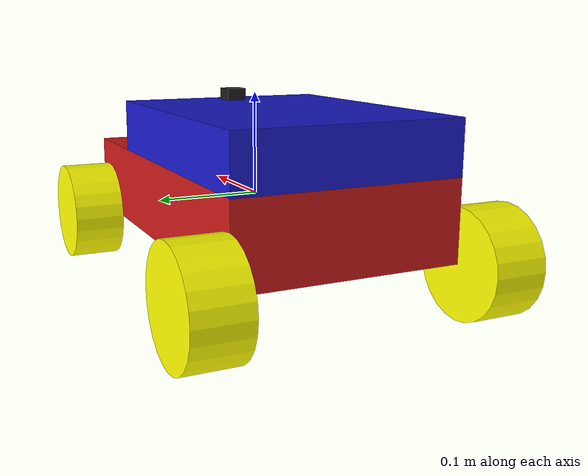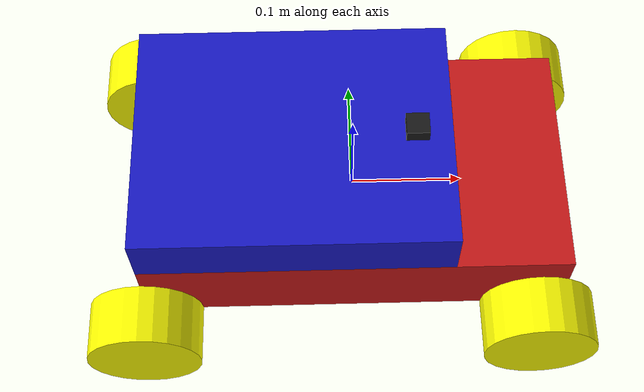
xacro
<?xml version="1.0"?>
<robot name="car" xmlns:xacro="http://ros.org/wiki/xacro">

  <xacro:property name="pi" value="3.1415926535897931" />
  <xacro:property name="car_length" value="0.3762" />
  <xacro:property name="car_width" value="0.2124" />
  <xacro:property name="car_height" value="0.0762" />
  <xacro:property name="car_mass" value="2.4" />
  <xacro:property name="wheel_radius" value="0.0508" />
  <xacro:property name="wheel_length" value="0.0508" />
  <xacro:property name="wheel_mass" value="0.6"/>
  <xacro:property name="capota_car_length" value="0.2746" />
  <xacro:property name="capota_car_width" value="0.2124" />
  <xacro:property name="capota_car_height" value="0.0508" />
  <xacro:property name="capota_car_mass" value="0.25" />

  <xacro:property name="steering_cylinder_radius" value="0.01" />
  <xacro:property name="steering_cylinder_length" value="0.2124" />
  <xacro:property name="steering_cylinder_mass" value="0.05" />

<xacro:property name="back_wheels_velocity_limit" value="100.0" />
  <xacro:property name="steering_velocity_limit" value="100.0" />

  <gazebo reference="base_link">
    <mu1>0.2</mu1>
    <mu2>0.2</mu2>
  </gazebo>
  <gazebo reference="back_right_wheel_link">
    <mu1>100.0</mu1>
    <mu2>100.0</mu2>
  </gazebo>
  <gazebo reference="back_left_wheel_link">
    <mu1>100.0</mu1>
    <mu2>100.0</mu2>
  </gazebo>
  <gazebo reference="front_right_wheel_link">
    <mu1>100.0</mu1>
    <mu2>100.0</mu2>
  </gazebo>
  <gazebo reference="front_left_wheel_link">
    <mu1>100.0</mu1>
    <mu2>100.0</mu2>
  </gazebo>

  <gazebo reference="base_link">
    <material>Gazebo/Green</material>
  </gazebo>
  <gazebo reference="capota">
    <material>Gazebo/Green</material>
  </gazebo>
  <gazebo reference="steering_cylinder_link">
    <material>Gazebo/DarkGrey</material>
  </gazebo>
  <gazebo reference="front_left_wheel_link">
    <material>Gazebo/Yellow</material>
  </gazebo>
  <gazebo reference="front_right_wheel_link">
    <material>Gazebo/Yellow</material>
  </gazebo>
  <gazebo reference="back_left_wheel_link">
    <material>Gazebo/Yellow</material>
  </gazebo>
  <gazebo reference="back_right_wheel_link">
    <material>Gazebo/Yellow</material>
  </gazebo>
  <gazebo reference="camera_link">
    <material>Gazebo/Red</material>
  </gazebo>

 <material name="car_body_color"> <color rgba="0.8 0.1 0.1 1" /> </material>
  <material name="car_capota_color"> <color rgba="0.1 0.1 0.8 1" /> </material>
  <material name="steering_color"> <color rgba="0.3 0.3 0.3 1" /> </material>
  <material name="wheel_main_color"> <color rgba="0.2 0.2 0.2 1" /> </material>
  <material name="wheel_stripe_color"> <color rgba="1.0 1.0 0.0 1" /> </material>
  <material name="camera_color"> <color rgba="0.1 0.1 0.1 1" /> </material>

  <material name="green">
    <color rgba="0 1 0 1" />
  </material>
  <material name="light_green">
    <color rgba="0.1 1 0.2 1" />
  </material>
  <material name="yellow">
    <color rgba="1 1 0 1" />
  </material>
  <material name="grey">
    <color rgba="0.5 0.5 0.5 1"/>
  </material>

  <gazebo>
    <plugin name="gazebo_ros_control" filename="libgazebo_ros_control.so">
      <robotNamespace>/car</robotNamespace>
      <robotSimType>gazebo_ros_control/DefaultRobotHWSim</robotSimType>
    </plugin>
  </gazebo>

<link name="dummy"> </link>
  <joint name="dummy_joint" type="fixed">
    <parent link="dummy" />
    <child link="base_link" />
  </joint>
  <link name="base_link">
    <visual>
      <geometry>
        <box size="${car_length} ${car_width} ${car_height}" />
      </geometry>
      <material name="car_body_color" />
    </visual>
    <collision>
      <geometry>
        <box size="${car_length} ${car_width} ${car_height}" />
      </geometry>
    </collision>
    <inertial>
      <mass value="${car_mass}" />
      <inertia
        ixx="${(car_mass/12) * (car_width**2 + car_height**2)}"
        ixy="0"
        ixz="0"
        iyy="${(car_mass/12) * (car_length**2 + car_height**2)}"
        iyz="0"
        izz="${(car_mass/12) * (car_length**2 + car_width**2)}" />
    </inertial>
  </link>

<link name="capota">
    <visual>
      <geometry>
        <box size="${capota_car_length} ${capota_car_width} ${capota_car_height}" />
      </geometry>
      <material name="car_capota_color" />
    </visual>
    <collision>
      <geometry>
        <box size="${capota_car_length} ${capota_car_width} ${capota_car_height}" />
      </geometry>
    </collision>
    <inertial>
      <mass value="${capota_car_mass}" />
      <inertia
        ixx="${(capota_car_mass/12) * (capota_car_width**2 + capota_car_height**2)}"
        ixy="0"
        ixz="0"
        iyy="${(capota_car_mass/12) * (capota_car_length**2 + capota_car_height**2)}"
        iyz="0"
        izz="${(capota_car_mass/12) * (capota_car_length**2 + capota_car_width**2)}" />
    </inertial>
  </link>
  <joint name="capota_joint" type="fixed">
    <parent link="base_link" />
    <child link="capota" />
    <origin xyz="${capota_car_length/2-car_length/2} 0 ${car_height/2+capota_car_height/2}"
      rpy="0 0 0" />
  </joint>

<link name="steering_cylinder_link">
    <visual>
      <geometry>
        <cylinder radius="${steering_cylinder_radius}" length="${steering_cylinder_length}"/>
      </geometry>
      <material name="steering_color"/>
    </visual>
    <collision>
      <geometry>
        <cylinder radius="${steering_cylinder_radius}" length="${steering_cylinder_length}"/>
      </geometry>
    </collision>
    <inertial>
      <mass value="${steering_cylinder_mass}"/>
      <inertia
        ixx="${(steering_cylinder_mass/12) * (3*steering_cylinder_radius**2 + steering_cylinder_length**2)}"
        ixy="0" ixz="0"
        iyy="${(steering_cylinder_mass/12) * (3*steering_cylinder_radius**2 + steering_cylinder_length**2)}"
        iyz="0"
        izz="${(steering_cylinder_mass/2) * steering_cylinder_radius**2}"/>
    </inertial>
  </link>

  <joint name="steering_cylinder_joint" type="revolute">
    <parent link="base_link"/>
    <child link="steering_cylinder_link"/>
    <origin xyz="${car_length/2-car_length/16} 0  ${-car_height/2}" rpy="${pi/2} 0 0"/>
    <axis xyz="0 1 0"/>
    <limit lower="${-pi/16}" upper="${pi/16}" effort="10.0" velocity="${steering_velocity_limit}"/>
  </joint>

  <link name="front_left_wheel_link">
    <visual>
      <geometry>
        <cylinder radius="${wheel_radius}" length="${wheel_length}"/>
      </geometry>
      <material name="yellow"/>
    </visual>
    <collision>
      <geometry>
        <cylinder radius="${wheel_radius}" length="${wheel_length}"/>
      </geometry>
    </collision>
    <inertial>
      <mass value="${wheel_mass}"/>
      <inertia
        ixx="${(wheel_mass/12) * (3*wheel_radius**2 + wheel_length**2)}"
        ixy="0" ixz="0"
        iyy="${(wheel_mass/12) * (3*wheel_radius**2 + wheel_length**2)}"
        iyz="0"
        izz="${(wheel_mass/2) * wheel_radius**2}"/>
    </inertial>
  </link>
  <joint name="front_left_wheel_joint" type="continuous">
    <parent link="steering_cylinder_link"/>
    <child link="front_left_wheel_link"/>
    <origin xyz="0 0 ${steering_cylinder_length/2+wheel_length/2}" rpy="0 0 0"/>
    <axis xyz="0 0 1"/>
  </joint>

<link name="front_right_wheel_link">
    <visual>
      <geometry>
        <cylinder radius="${wheel_radius}" length="${wheel_length}"/>
      </geometry>
      <material name="yellow"/>
    </visual>
    <collision>
      <geometry>
        <cylinder radius="${wheel_radius}" length="${wheel_length}"/>
      </geometry>
    </collision>
    <inertial>
      <mass value="${wheel_mass}"/>
      <inertia
        ixx="${(wheel_mass/12) * (3*wheel_radius**2 + wheel_length**2)}"
        ixy="0" ixz="0"
        iyy="${(wheel_mass/12) * (3*wheel_radius**2 + wheel_length**2)}"
        iyz="0"
        izz="${(wheel_mass/2) * wheel_radius**2}"/>
    </inertial>
  </link>

  <joint name="front_right_wheel_joint" type="continuous">
    <parent link="steering_cylinder_link"/>
    <child link="front_right_wheel_link"/>
    <origin xyz="0 0 ${-steering_cylinder_length/2-wheel_length/2} " rpy="0 0 0"/>
    <axis xyz="0 0 1"/>
  </joint>

  <link name="back_left_wheel_link">
    <visual>
      <geometry>
        <cylinder radius="${wheel_radius}" length="${wheel_length}" />
      </geometry>
      <material name="yellow" />
    </visual>
    <collision>
      <geometry>
        <cylinder radius="${wheel_radius}" length="${wheel_length}" />
      </geometry>
    </collision>
    <inertial>
      <mass value="${wheel_mass}" />
      <inertia
        ixx="${(wheel_mass/12) * (3*wheel_radius**2 + wheel_length**2)}"
        ixy="0"
        ixz="0"
        iyy="${(wheel_mass/12) * (3*wheel_radius**2 + wheel_length**2)}"
        iyz="0"
        izz="${(wheel_mass/2) * wheel_radius**2}" />
    </inertial>
  </link>
  <joint name="back_left_wheel_joint" type="continuous">
    <parent link="base_link" />
    <child link="back_left_wheel_link" />
    <origin xyz="${-car_length/2} ${+car_width/2+wheel_length/2} ${-car_height/2}" rpy="${pi/2} 0 0" />
    <axis xyz="0 0 1" />
    <limit effort="10.0" velocity="${back_wheels_velocity_limit}" />
  </joint>

  <link name="back_right_wheel_link">
    <visual>
      <geometry>
        <cylinder radius="${wheel_radius}" length="${wheel_length}" />
      </geometry>
      <material name="yellow" />
    </visual>
    <collision>
      <geometry>
        <cylinder radius="${wheel_radius}" length="${wheel_length}" />
      </geometry>
    </collision>
    <inertial>
      <mass value="${wheel_mass}" />
      <inertia
        ixx="${(wheel_mass/12) * (3*wheel_radius**2 + wheel_length**2)}"
        ixy="0"
        ixz="0"
        iyy="${(wheel_mass/12) * (3*wheel_radius**2 + wheel_length**2)}"
        iyz="0"
        izz="${(wheel_mass/2) * wheel_radius**2}" />
    </inertial>
  </link>
  <joint name="back_right_wheel_joint" type="continuous">
    <parent link="base_link" />
    <child link="back_right_wheel_link" />
    <origin xyz="${-car_length/2} ${-car_width/2-wheel_length/2} ${-car_height/2}"
      rpy="${pi/2} 0 0" />
    <axis xyz="0 0 1" />
    <limit effort="10.0" velocity="${back_wheels_velocity_limit}" />
  </joint>

<link name="camera_link">
    <visual>
      <geometry>
        <box size="0.02 0.02 0.02"/> </geometry>
      <material name="camera_color"/>
    </visual>
    <collision>
      <geometry>
        <box size="0.02 0.02 0.02"/>
      </geometry>
    </collision>
    <inertial>
      <mass value="0.01"/> <inertia ixx="0.00000833" ixy="0" ixz="0"
               iyy="0.00000833" iyz="0"
               izz="0.00000833"/>
    </inertial>
  </link>

  <joint name="camera_joint" type="fixed">
    <parent link="capota"/>
    <child link="camera_link"/>
    <origin xyz="${capota_car_width/2} 0 ${capota_car_height/2 + 0.002}" rpy="0 0 0"/>
  </joint>

<gazebo reference="camera_link">
    <sensor type="camera" name="car_camera_sensor">
      <update_rate>30.0</update_rate> <camera name="car_camera">
        <horizontal_fov>1.39626</horizontal_fov> <image>
          <width>640</width>
          <height>480</height>
          <format>R8G8B8</format>
        </image>
        <clip>
          <near>0.05</near>
          <far>10.0</far>
        </clip>
        <noise>
          <type>gaussian</type>
          <mean>0.0</mean>
          <stddev>0.007</stddev>
        </noise>
      </camera>
      <plugin name="camera_controller" filename="libgazebo_ros_camera.so">
        <robotNamespace>/car</robotNamespace> <alwaysOn>true</alwaysOn>
        <updateRate>30.0</updateRate>
        <cameraName>car_camera</cameraName>
        <imageTopicName>image_raw</imageTopicName>
        <cameraInfoTopicName>camera_info</cameraInfoTopicName>
        <frameName>camera_link_optical</frameName> <hackBaseline>0.07</hackBaseline> <distortionK1>0.0</distortionK1>
        <distortionK2>0.0</distortionK2>
        <distortionK3>0.0</distortionK3>
        <distortionT1>0.0</distortionT1>
        <distortionT2>0.0</distortionT2>
      </plugin>
    </sensor>
  </gazebo>
  <transmission name="back_left_wheel_trans">
    <type>transmission_interface/SimpleTransmission</type>
    <joint name="back_left_wheel_joint">
      <hardwareInterface>hardware_interface/EffortJointInterface</hardwareInterface>
    </joint>
    <actuator name="back_left_wheel_motor">
      <hardwareInterface>hardware_interface/EffortJointInterface</hardwareInterface>
      <mechanicalReduction>1</mechanicalReduction>
    </actuator>
  </transmission>

  <transmission name="back_right_wheel_trans">
    <type>transmission_interface/SimpleTransmission</type>
    <joint name="back_right_wheel_joint">
      <hardwareInterface>hardware_interface/EffortJointInterface</hardwareInterface>
    </joint>
    <actuator name="back_right_wheel_motor">
      <hardwareInterface>hardware_interface/EffortJointInterface</hardwareInterface>
      <mechanicalReduction>1</mechanicalReduction>
    </actuator>
  </transmission>
  <transmission name="front_steer_trans">
    <type>transmission_interface/SimpleTransmission</type>
    <joint name="steering_cylinder_joint">
      <hardwareInterface>hardware_interface/EffortJointInterface</hardwareInterface>
    </joint>
    <actuator name="front_steer_motor">
      <hardwareInterface>hardware_interface/EffortJointInterface</hardwareInterface>
      <mechanicalReduction>1</mechanicalReduction>
    </actuator>
  </transmission>
</robot>
